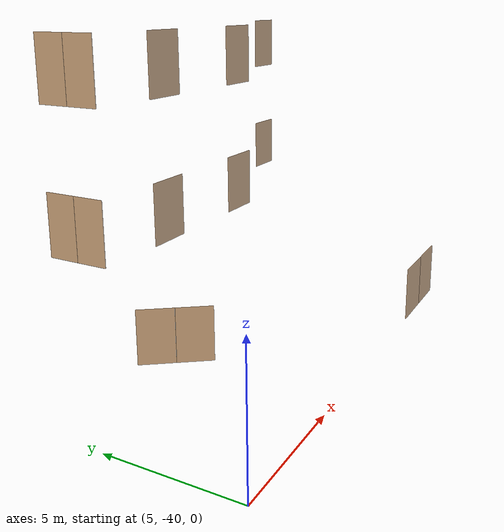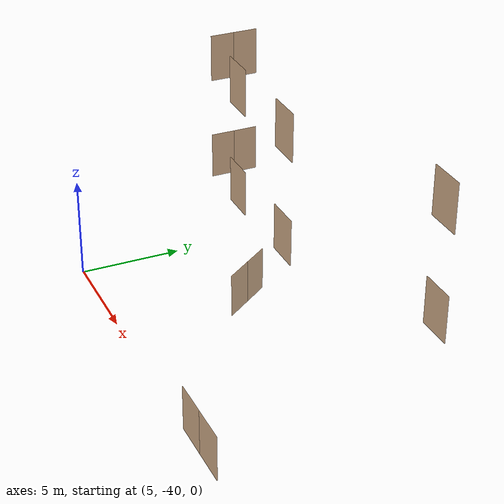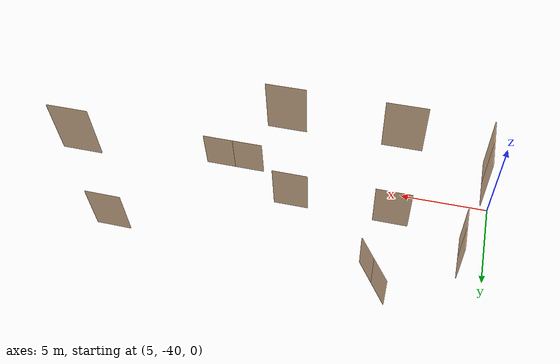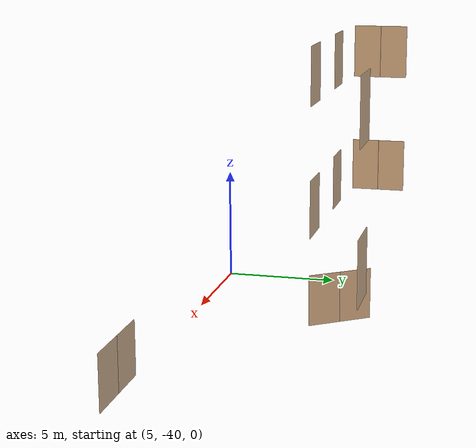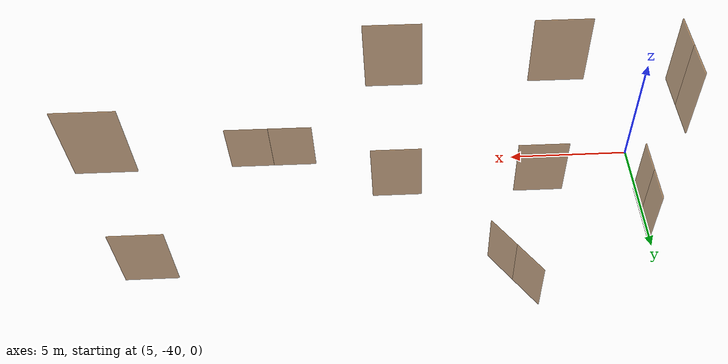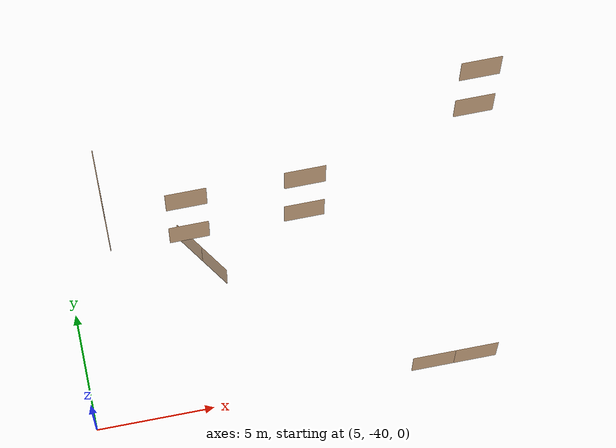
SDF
<sdf version="1.7">
 <world name="world">
  <include><uri>model://sun</uri></include>
  <model name="L1_door1">
   <pose>10.709634015069973 -33.66240662817629 0.0 0 0 2.1908053757712316</pose>
   <link name="right">
    <pose>0.7171762283854256 0 1.11 0 0 0</pose>
    <visual name="right_visual">
     <geometry><box><size>1.4243524567708512 0.03 2.2</size></box></geometry>
     <material><ambient>0.5 0.25 0 0.6</ambient><diffuse>0.5 0.25 0 0.6</diffuse></material>
    </visual>
    <collision name="right_collision">
     <geometry><box><size>1.4243524567708512 0.03 2.2</size></box></geometry>
     <surface><contact><collide_bitmask>0x02</collide_bitmask></contact></surface>
    </collision>
    <inertial>
     <mass>50.0</mass>
     <inertia><ixx>20.17041666666667</ixx><iyy>28.619916337954837</iyy><izz>8.456999671288166</izz></inertia>
    </inertial>
   </link>
   <joint name="right_joint" type="revolute">
    <parent>world</parent>
    <child>right</child>
    <axis><xyz>0 0 1</xyz><limit><lower>0</lower><upper>1.57</upper></limit></axis>
    <pose>0.7171762283854256 0 0 0 0 0</pose>
   </joint>
   <link name="left">
    <pose>-0.7171762283854256 0 1.11 0 0 0</pose>
    <visual name="left_visual">
     <geometry><box><size>1.4243524567708512 0.03 2.2</size></box></geometry>
     <material><ambient>0.5 0.25 0 0.6</ambient><diffuse>0.5 0.25 0 0.6</diffuse></material>
    </visual>
    <collision name="left_collision">
     <geometry><box><size>1.4243524567708512 0.03 2.2</size></box></geometry>
     <surface><contact><collide_bitmask>0x02</collide_bitmask></contact></surface>
    </collision>
    <inertial>
     <mass>50.0</mass>
     <inertia><ixx>20.17041666666667</ixx><iyy>28.619916337954837</iyy><izz>8.456999671288166</izz></inertia>
    </inertial>
   </link>
   <joint name="left_joint" type="revolute">
    <parent>world</parent>
    <child>left</child>
    <axis><xyz>0 0 1</xyz><limit><lower>-1.57</lower><upper>0</upper></limit></axis>
    <pose>-0.7171762283854256 0 0 0 0 0</pose>
   </joint>
   <plugin name="double_hinged_door" filename="libdouble_hinged_door_plugin.so">
    <ros><namespace>/doors/L1_door1</namespace></ros>
    <right_joint>right_joint</right_joint>
    <left_joint>left_joint</left_joint>
    <open_angle>1.57</open_angle>
    <kp>150.0</kp>
    <kd>80.0</kd>
   </plugin>
  </model>
  <model name="L1_door3">
   <pose>20.250916593273978 -40.03653325504781 0.0 0 0 3.141592653589793</pose>
   <link name="right">
    <pose>0.9032757608376549 0 1.11 0 0 0</pose>
    <visual name="right_visual">
     <geometry><box><size>1.7965515216753098 0.03 2.2</size></box></geometry>
     <material><ambient>0.5 0.25 0 0.6</ambient><diffuse>0.5 0.25 0 0.6</diffuse></material>
    </visual>
    <collision name="right_collision">
     <geometry><box><size>1.7965515216753098 0.03 2.2</size></box></geometry>
     <surface><contact><collide_bitmask>0x02</collide_bitmask></contact></surface>
    </collision>
    <inertial>
     <mass>50.0</mass>
     <inertia><ixx>20.17041666666667</ixx><iyy>33.61498904180781</iyy><izz>13.452072375141132</izz></inertia>
    </inertial>
   </link>
   <joint name="right_joint" type="prismatic">
    <parent>world</parent>
    <child>right</child>
    <axis>
     <xyz>1 0 0</xyz>
     <limit><lower>0.0</lower><upper>1.8065515216753099</upper><effort>500.0</effort></limit>
    </axis>
   </joint>
   <link name="left">
    <pose>-0.9032757608376549 0 1.11 0 0 0</pose>
    <visual name="left_visual">
     <geometry><box><size>1.7965515216753098 0.03 2.2</size></box></geometry>
     <material><ambient>0.5 0.25 0 0.6</ambient><diffuse>0.5 0.25 0 0.6</diffuse></material>
    </visual>
    <collision name="left_collision">
     <geometry><box><size>1.7965515216753098 0.03 2.2</size></box></geometry>
     <surface><contact><collide_bitmask>0x02</collide_bitmask></contact></surface>
    </collision>
    <inertial>
     <mass>50.0</mass>
     <inertia><ixx>20.17041666666667</ixx><iyy>33.61498904180781</iyy><izz>13.452072375141132</izz></inertia>
    </inertial>
   </link>
   <joint name="left_joint" type="prismatic">
    <parent>world</parent>
    <child>left</child>
    <axis>
     <xyz>1 0 0</xyz>
     <limit><lower>-1.8065515216753099</lower><upper>0.0</upper><effort>500.0</effort></limit>
    </axis>
   </joint>
   <plugin name="double_sliding_door" filename="libdouble_sliding_door_plugin.so">
    <ros><namespace>/doors/L1_door3</namespace></ros>
    <right_joint>right_joint</right_joint>
    <left_joint>left_joint</left_joint>
    <open_distance>1.3</open_distance>
    <kp>100.0</kp>
    <kd>120.0</kd>
   </plugin>
  </model>
  <model name="L2_door10">
   <pose>6.967646280829374 -32.68448629721379 5.0 0 0 1.5705221665011055</pose>
   <link name="right">
    <pose>0.5645263305892074 0 1.11 0 0 0</pose>
    <visual name="right_visual">
     <geometry><box><size>1.1190526611784148 0.03 2.2</size></box></geometry>
     <material><ambient>0.5 0.25 0 0.6</ambient><diffuse>0.5 0.25 0 0.6</diffuse></material>
    </visual>
    <collision name="right_collision">
     <geometry><box><size>1.1190526611784148 0.03 2.2</size></box></geometry>
     <surface><contact><collide_bitmask>0x02</collide_bitmask></contact></surface>
    </collision>
    <inertial>
     <mass>50.0</mass>
     <inertia><ixx>20.17041666666667</ixx><iyy>25.38449524371039</iyy><izz>5.221578577043717</izz></inertia>
    </inertial>
   </link>
   <joint name="right_joint" type="revolute">
    <parent>world</parent>
    <child>right</child>
    <axis><xyz>0 0 -1</xyz><limit><lower>0</lower><upper>1.57</upper></limit></axis>
    <pose>0.5645263305892074 0 0 0 0 0</pose>
   </joint>
   <link name="left">
    <pose>-0.5645263305892074 0 1.11 0 0 0</pose>
    <visual name="left_visual">
     <geometry><box><size>1.1190526611784148 0.03 2.2</size></box></geometry>
     <material><ambient>0.5 0.25 0 0.6</ambient><diffuse>0.5 0.25 0 0.6</diffuse></material>
    </visual>
    <collision name="left_collision">
     <geometry><box><size>1.1190526611784148 0.03 2.2</size></box></geometry>
     <surface><contact><collide_bitmask>0x02</collide_bitmask></contact></surface>
    </collision>
    <inertial>
     <mass>50.0</mass>
     <inertia><ixx>20.17041666666667</ixx><iyy>25.38449524371039</iyy><izz>5.221578577043717</izz></inertia>
    </inertial>
   </link>
   <joint name="left_joint" type="revolute">
    <parent>world</parent>
    <child>left</child>
    <axis><xyz>0 0 -1</xyz><limit><lower>-1.57</lower><upper>0</upper></limit></axis>
    <pose>-0.5645263305892074 0 0 0 0 0</pose>
   </joint>
   <plugin name="double_hinged_door" filename="libdouble_hinged_door_plugin.so">
    <ros><namespace>/doors/L2_door10</namespace></ros>
    <right_joint>right_joint</right_joint>
    <left_joint>left_joint</left_joint>
    <open_angle>1.57</open_angle>
    <kp>150.0</kp>
    <kd>80.0</kd>
   </plugin>
  </model>
  <model name="L2_door9">
   <pose>22.726107627620856 -30.877112199768717 5.0 0 0 3.1413184932960023</pose>
   <link name="right">
    <pose>0 0 1.11 0 0 0</pose>
    <visual name="right_visual">
     <geometry><box><size>1.6545737934173281 0.03 2.2</size></box></geometry>
     <material><ambient>0.5 0.25 0 0.6</ambient><diffuse>0.5 0.25 0 0.6</diffuse></material>
    </visual>
    <collision name="right_collision">
     <geometry><box><size>1.6545737934173281 0.03 2.2</size></box></geometry>
     <surface><contact><collide_bitmask>0x02</collide_bitmask></contact></surface>
    </collision>
    <inertial>
     <mass>50.0</mass>
     <inertia><ixx>20.17041666666667</ixx><iyy>31.573393491097537</iyy><izz>11.410476824430864</izz></inertia>
    </inertial>
   </link>
   <joint name="right_joint" type="revolute">
    <parent>world</parent>
    <child>right</child>
    <axis><xyz>0 0 1</xyz><limit><lower>0</lower><upper>1.57</upper></limit></axis>
    <pose>0.8322868967086641 0 0 0 0 0</pose>
   </joint>
   <plugin name="single_hinged_door" filename="libsingle_hinged_door_plugin.so">
    <ros><namespace>/doors/L2_door9</namespace></ros>
    <right_joint>right_joint</right_joint>
    <open_angle>1.57</open_angle>
    <kp>150.0</kp>
    <kd>80.0</kd>
   </plugin>
  </model>
  <model name="L2_door11">
   <pose>10.240967986111862 -33.92540800608541 5.0 0 0 3.1413184932960045</pose>
   <link name="right">
    <pose>0 0 1.11 0 0 0</pose>
    <visual name="right_visual">
     <geometry><box><size>1.6545737934173281 0.03 2.2</size></box></geometry>
     <material><ambient>0.5 0.25 0 0.6</ambient><diffuse>0.5 0.25 0 0.6</diffuse></material>
    </visual>
    <collision name="right_collision">
     <geometry><box><size>1.6545737934173281 0.03 2.2</size></box></geometry>
     <surface><contact><collide_bitmask>0x02</collide_bitmask></contact></surface>
    </collision>
    <inertial>
     <mass>50.0</mass>
     <inertia><ixx>20.17041666666667</ixx><iyy>31.573393491097537</iyy><izz>11.410476824430864</izz></inertia>
    </inertial>
   </link>
   <joint name="right_joint" type="revolute">
    <parent>world</parent>
    <child>right</child>
    <axis><xyz>0 0 -1</xyz><limit><lower>0</lower><upper>1.57</upper></limit></axis>
    <pose>0.8322868967086641 0 0 0 0 0</pose>
   </joint>
   <plugin name="single_hinged_door" filename="libsingle_hinged_door_plugin.so">
    <ros><namespace>/doors/L2_door11</namespace></ros>
    <right_joint>right_joint</right_joint>
    <open_angle>1.57</open_angle>
    <kp>150.0</kp>
    <kd>80.0</kd>
   </plugin>
  </model>
  <model name="L2_door12">
   <pose>15.012746014575553 -33.92671623818438 5.0 0 0 3.1413184932960045</pose>
   <link name="right">
    <pose>0 0 1.11 0 0 0</pose>
    <visual name="right_visual">
     <geometry><box><size>1.6545737934173281 0.03 2.2</size></box></geometry>
     <material><ambient>0.5 0.25 0 0.6</ambient><diffuse>0.5 0.25 0 0.6</diffuse></material>
    </visual>
    <collision name="right_collision">
     <geometry><box><size>1.6545737934173281 0.03 2.2</size></box></geometry>
     <surface><contact><collide_bitmask>0x02</collide_bitmask></contact></surface>
    </collision>
    <inertial>
     <mass>50.0</mass>
     <inertia><ixx>20.17041666666667</ixx><iyy>31.573393491097537</iyy><izz>11.410476824430864</izz></inertia>
    </inertial>
   </link>
   <joint name="right_joint" type="revolute">
    <parent>world</parent>
    <child>right</child>
    <axis><xyz>0 0 -1</xyz><limit><lower>0</lower><upper>1.57</upper></limit></axis>
    <pose>0.8322868967086641 0 0 0 0 0</pose>
   </joint>
   <plugin name="single_hinged_door" filename="libsingle_hinged_door_plugin.so">
    <ros><namespace>/doors/L2_door12</namespace></ros>
    <right_joint>right_joint</right_joint>
    <open_angle>1.57</open_angle>
    <kp>150.0</kp>
    <kd>80.0</kd>
   </plugin>
  </model>
  <model name="L3_door10">
   <pose>6.967646280829374 -32.68448629721379 10.0 0 0 1.5705221665011055</pose>
   <link name="right">
    <pose>0.5645263305892074 0 1.11 0 0 0</pose>
    <visual name="right_visual">
     <geometry><box><size>1.1190526611784148 0.03 2.2</size></box></geometry>
     <material><ambient>0.5 0.25 0 0.6</ambient><diffuse>0.5 0.25 0 0.6</diffuse></material>
    </visual>
    <collision name="right_collision">
     <geometry><box><size>1.1190526611784148 0.03 2.2</size></box></geometry>
     <surface><contact><collide_bitmask>0x02</collide_bitmask></contact></surface>
    </collision>
    <inertial>
     <mass>50.0</mass>
     <inertia><ixx>20.17041666666667</ixx><iyy>25.38449524371039</iyy><izz>5.221578577043717</izz></inertia>
    </inertial>
   </link>
   <joint name="right_joint" type="revolute">
    <parent>world</parent>
    <child>right</child>
    <axis><xyz>0 0 -1</xyz><limit><lower>0</lower><upper>1.57</upper></limit></axis>
    <pose>0.5645263305892074 0 0 0 0 0</pose>
   </joint>
   <link name="left">
    <pose>-0.5645263305892074 0 1.11 0 0 0</pose>
    <visual name="left_visual">
     <geometry><box><size>1.1190526611784148 0.03 2.2</size></box></geometry>
     <material><ambient>0.5 0.25 0 0.6</ambient><diffuse>0.5 0.25 0 0.6</diffuse></material>
    </visual>
    <collision name="left_collision">
     <geometry><box><size>1.1190526611784148 0.03 2.2</size></box></geometry>
     <surface><contact><collide_bitmask>0x02</collide_bitmask></contact></surface>
    </collision>
    <inertial>
     <mass>50.0</mass>
     <inertia><ixx>20.17041666666667</ixx><iyy>25.38449524371039</iyy><izz>5.221578577043717</izz></inertia>
    </inertial>
   </link>
   <joint name="left_joint" type="revolute">
    <parent>world</parent>
    <child>left</child>
    <axis><xyz>0 0 -1</xyz><limit><lower>-1.57</lower><upper>0</upper></limit></axis>
    <pose>-0.5645263305892074 0 0 0 0 0</pose>
   </joint>
   <plugin name="double_hinged_door" filename="libdouble_hinged_door_plugin.so">
    <ros><namespace>/doors/L3_door10</namespace></ros>
    <right_joint>right_joint</right_joint>
    <left_joint>left_joint</left_joint>
    <open_angle>1.57</open_angle>
    <kp>150.0</kp>
    <kd>80.0</kd>
   </plugin>
  </model>
  <model name="L3_door9">
   <pose>22.726107627620856 -30.877112199768717 10.0 0 0 3.1413184932960023</pose>
   <link name="right">
    <pose>0 0 1.11 0 0 0</pose>
    <visual name="right_visual">
     <geometry><box><size>1.6545737934173281 0.03 2.2</size></box></geometry>
     <material><ambient>0.5 0.25 0 0.6</ambient><diffuse>0.5 0.25 0 0.6</diffuse></material>
    </visual>
    <collision name="right_collision">
     <geometry><box><size>1.6545737934173281 0.03 2.2</size></box></geometry>
     <surface><contact><collide_bitmask>0x02</collide_bitmask></contact></surface>
    </collision>
    <inertial>
     <mass>50.0</mass>
     <inertia><ixx>20.17041666666667</ixx><iyy>31.573393491097537</iyy><izz>11.410476824430864</izz></inertia>
    </inertial>
   </link>
   <joint name="right_joint" type="revolute">
    <parent>world</parent>
    <child>right</child>
    <axis><xyz>0 0 1</xyz><limit><lower>0</lower><upper>1.57</upper></limit></axis>
    <pose>0.8322868967086641 0 0 0 0 0</pose>
   </joint>
   <plugin name="single_hinged_door" filename="libsingle_hinged_door_plugin.so">
    <ros><namespace>/doors/L3_door9</namespace></ros>
    <right_joint>right_joint</right_joint>
    <open_angle>1.57</open_angle>
    <kp>150.0</kp>
    <kd>80.0</kd>
   </plugin>
  </model>
  <model name="L3_door12">
   <pose>15.012746014575553 -33.92671623818438 10.0 0 0 3.1413184932960045</pose>
   <link name="right">
    <pose>0 0 1.11 0 0 0</pose>
    <visual name="right_visual">
     <geometry><box><size>1.6545737934173281 0.03 2.2</size></box></geometry>
     <material><ambient>0.5 0.25 0 0.6</ambient><diffuse>0.5 0.25 0 0.6</diffuse></material>
    </visual>
    <collision name="right_collision">
     <geometry><box><size>1.6545737934173281 0.03 2.2</size></box></geometry>
     <surface><contact><collide_bitmask>0x02</collide_bitmask></contact></surface>
    </collision>
    <inertial>
     <mass>50.0</mass>
     <inertia><ixx>20.17041666666667</ixx><iyy>31.573393491097537</iyy><izz>11.410476824430864</izz></inertia>
    </inertial>
   </link>
   <joint name="right_joint" type="revolute">
    <parent>world</parent>
    <child>right</child>
    <axis><xyz>0 0 -1</xyz><limit><lower>0</lower><upper>1.57</upper></limit></axis>
    <pose>0.8322868967086641 0 0 0 0 0</pose>
   </joint>
   <plugin name="single_hinged_door" filename="libsingle_hinged_door_plugin.so">
    <ros><namespace>/doors/L3_door12</namespace></ros>
    <right_joint>right_joint</right_joint>
    <open_angle>1.57</open_angle>
    <kp>150.0</kp>
    <kd>80.0</kd>
   </plugin>
  </model>
  <model name="L3_door11">
   <pose>10.240967986111862 -33.92540800608541 10.0 0 0 3.1413184932960045</pose>
   <link name="right">
    <pose>0 0 1.11 0 0 0</pose>
    <visual name="right_visual">
     <geometry><box><size>1.6545737934173281 0.03 2.2</size></box></geometry>
     <material><ambient>0.5 0.25 0 0.6</ambient><diffuse>0.5 0.25 0 0.6</diffuse></material>
    </visual>
    <collision name="right_collision">
     <geometry><box><size>1.6545737934173281 0.03 2.2</size></box></geometry>
     <surface><contact><collide_bitmask>0x02</collide_bitmask></contact></surface>
    </collision>
    <inertial>
     <mass>50.0</mass>
     <inertia><ixx>20.17041666666667</ixx><iyy>31.573393491097537</iyy><izz>11.410476824430864</izz></inertia>
    </inertial>
   </link>
   <joint name="right_joint" type="revolute">
    <parent>world</parent>
    <child>right</child>
    <axis><xyz>0 0 -1</xyz><limit><lower>0</lower><upper>1.57</upper></limit></axis>
    <pose>0.8322868967086641 0 0 0 0 0</pose>
   </joint>
   <plugin name="single_hinged_door" filename="libsingle_hinged_door_plugin.so">
    <ros><namespace>/doors/L3_door11</namespace></ros>
    <right_joint>right_joint</right_joint>
    <open_angle>1.57</open_angle>
    <kp>150.0</kp>
    <kd>80.0</kd>
   </plugin>
  </model>
 </world>
</sdf>
